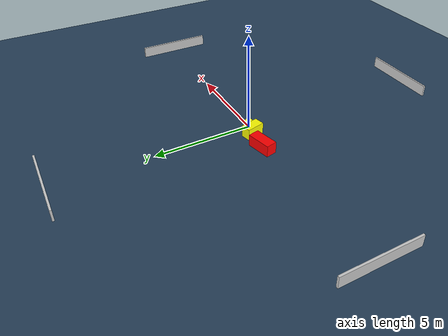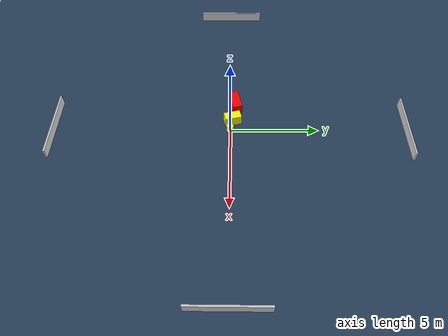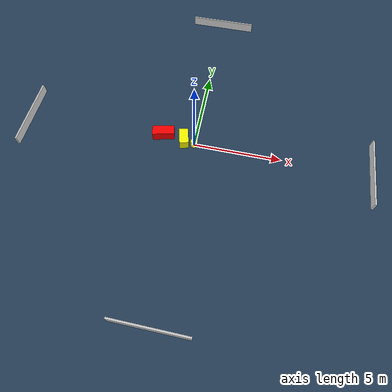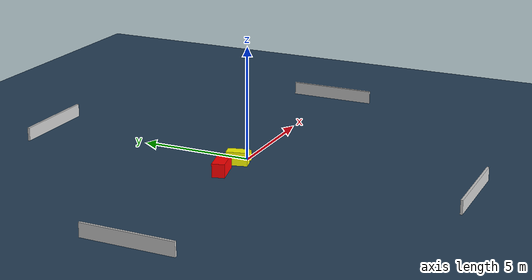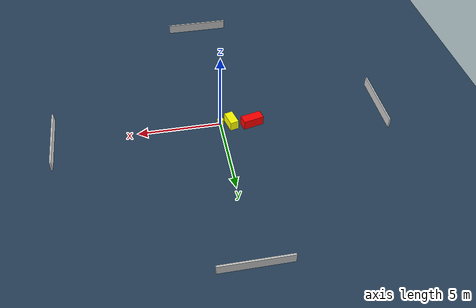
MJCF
<?xml version="1.0" ?>
<mujoco model="generated_environment">
  <option timestep="0.01" integrator="RK4" cone="elliptic"/>
  <default>
    <geom density="1"/>
  </default>
  <asset>
    <texture builtin="gradient" height="3072" name="skybox" rgb1="0.3 0.5 0.7" rgb2="0 0 0" type="skybox" width="512"/>
    <texture builtin="checker" height="300" name="groundplane" rgb1="0.2 0.3 0.4" rgb2="0.1 0.2 0.3" type="2d" width="300"/>
    <material name="groundplane" reflectance="0.2" texrepeat="5 5" texture="groundplane"/>
  </asset>
  <worldbody>
    <light dir="0 0 -1" directional="true" pos="0 0 1.5"/>
    <geom condim="3" friction="0.5 0.005 0.001" material="groundplane" name="floor" pos="0 0 0" size="0 0 0.05" type="plane"/>
    <body name="walls">
      <geom name="wall_1" condim="4" pos="-10.0 0.0 0.3" rgba="0.800000011920929 0.800000011920929 0.800000011920929 1.0" size="0.05 2.0 0.3" type="box"/>
      <geom name="wall_2" condim="4" pos="10.0 0.0 0.3" rgba="0.800000011920929 0.800000011920929 0.800000011920929 1.0" size="0.05 2.0 0.3" type="box"/>
      <geom name="wall_3" condim="4" pos="0.0 -10.0 0.3" rgba="0.800000011920929 0.800000011920929 0.800000011920929 1.0" size="2.0 0.05 0.3" type="box"/>
      <geom name="wall_4" condim="4" pos="0.0 10.0 0.3" rgba="0.800000011920929 0.800000011920929 0.800000011920929 1.0" size="2.0 0.05 0.3" type="box"/>
    </body>
    <body name="robot">
      <joint name="joint_x" type="slide" pos="0 0 0" axis="1 0 0"/>
      <joint name="joint_y" type="slide" pos="0 0 0" axis="0 1 0"/>
      <geom name="robot" type="cylinder" pos="0.0 0.0 0.2" size="0.2 0.2 0.0" mass="5.0" friction="1.0 0.005 0.0001" condim="4" rgba="1.0 1.0 0.0 1.0"/>
    </body>
    <body name="obstacle_1_movable">
      <geom name="obstacle_1_movable" condim="4" pos="-0.6427593744840983 0.13972406762412554 0.3" euler="0 0 103.99193416423346" friction="0.0 0.005 0.001" rgba="1.0 1.0 0.0 1.0" size="0.46905019959780897 0.25957225277339674 0.3" type="box" mass="0.1"/>
      <joint type="free"/>
    </body>
    <body name="obstacle_2_static">
      <geom name="obstacle_2_static" condim="4" pos="-1.8886290982669196 0.2896303011222091 0.3" euler="0 0 193.2486136629814" friction="0.0 0.005 0.001" rgba="1.0 0.0 0.0 1.0" size="0.6308322503036665 0.27930841667161294 0.3" type="box"/>
    </body>
  </worldbody>
  <actuator>
    <motor name="actuator_x" joint="joint_x" gear="1" ctrlrange="-1 1"/>
    <motor name="actuator_y" joint="joint_y" gear="1" ctrlrange="-1 1"/>
  </actuator>
</mujoco>
